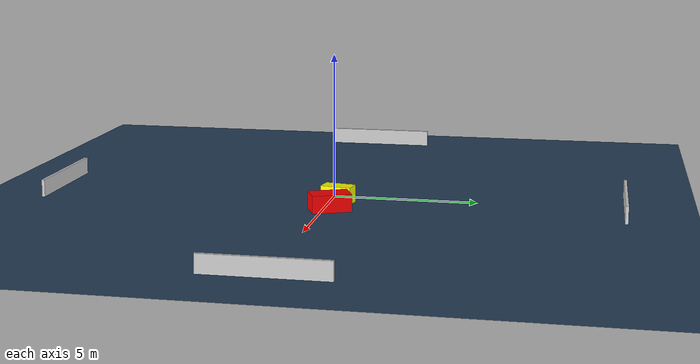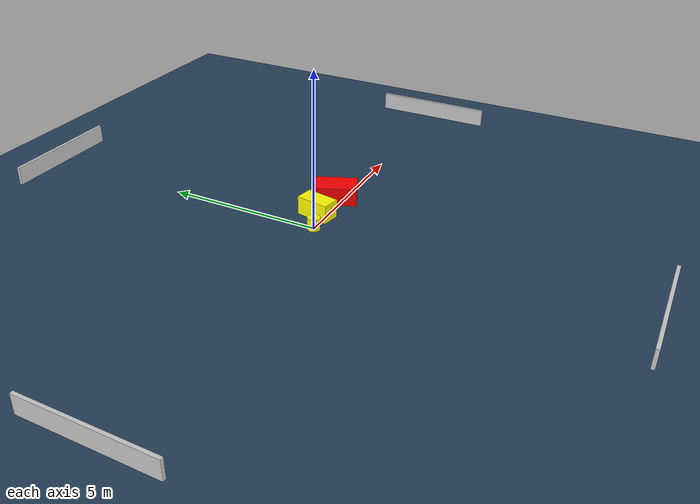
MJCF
<?xml version="1.0" ?>
<mujoco model="generated_environment">
  <option timestep="0.01" integrator="RK4" cone="elliptic"/>
  <default>
    <geom density="1"/>
  </default>
  <asset>
    <texture builtin="gradient" height="3072" name="skybox" rgb1="0.3 0.5 0.7" rgb2="0 0 0" type="skybox" width="512"/>
    <texture builtin="checker" height="300" name="groundplane" rgb1="0.2 0.3 0.4" rgb2="0.1 0.2 0.3" type="2d" width="300"/>
    <material name="groundplane" reflectance="0.2" texrepeat="5 5" texture="groundplane"/>
  </asset>
  <worldbody>
    <light dir="0 0 -1" directional="true" pos="0 0 1.5"/>
    <geom condim="3" friction="0.5 0.005 0.001" material="groundplane" name="floor" pos="0 0 0" size="0 0 0.05" type="plane"/>
    <body name="walls">
      <geom name="wall_1" condim="4" pos="-10.0 0.0 0.3" rgba="0.800000011920929 0.800000011920929 0.800000011920929 1.0" size="0.05 2.0 0.3" type="box"/>
      <geom name="wall_2" condim="4" pos="10.0 0.0 0.3" rgba="0.800000011920929 0.800000011920929 0.800000011920929 1.0" size="0.05 2.0 0.3" type="box"/>
      <geom name="wall_3" condim="4" pos="0.0 -10.0 0.3" rgba="0.800000011920929 0.800000011920929 0.800000011920929 1.0" size="2.0 0.05 0.3" type="box"/>
      <geom name="wall_4" condim="4" pos="0.0 10.0 0.3" rgba="0.800000011920929 0.800000011920929 0.800000011920929 1.0" size="2.0 0.05 0.3" type="box"/>
    </body>
    <body name="robot">
      <joint name="joint_x" type="slide" pos="0 0 0" axis="1 0 0"/>
      <joint name="joint_y" type="slide" pos="0 0 0" axis="0 1 0"/>
      <geom name="robot" type="cylinder" pos="0.0 0.0 0.2" size="0.2 0.2 0.0" mass="5.0" friction="1.0 0.005 0.0001" condim="4" rgba="1.0 1.0 0.0 1.0"/>
    </body>
    <body name="obstacle_1_movable">
      <geom name="obstacle_1_movable" condim="4" pos="0.7957147192031295 0.29885218041820016 0.3" euler="0 0 169.6291793468497" friction="0.0 0.005 0.001" rgba="1.0 1.0 0.0 1.0" size="0.2924061741130667 0.5356353398515836 0.3" type="box" mass="0.1"/>
      <joint type="free"/>
    </body>
    <body name="obstacle_2_static">
      <geom name="obstacle_2_static" condim="4" pos="1.9779398351939523 0.24242615578532947 0.3" euler="0 0 203.21865445369855" friction="0.0 0.005 0.001" rgba="1.0 0.0 0.0 1.0" size="0.415427410457764 0.6744695017610183 0.3" type="box"/>
    </body>
  </worldbody>
  <actuator>
    <motor name="actuator_x" joint="joint_x" gear="1" ctrlrange="-1 1"/>
    <motor name="actuator_y" joint="joint_y" gear="1" ctrlrange="-1 1"/>
  </actuator>
</mujoco>
